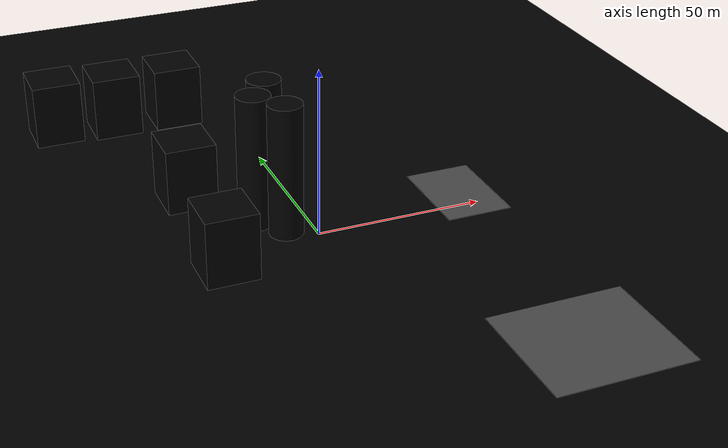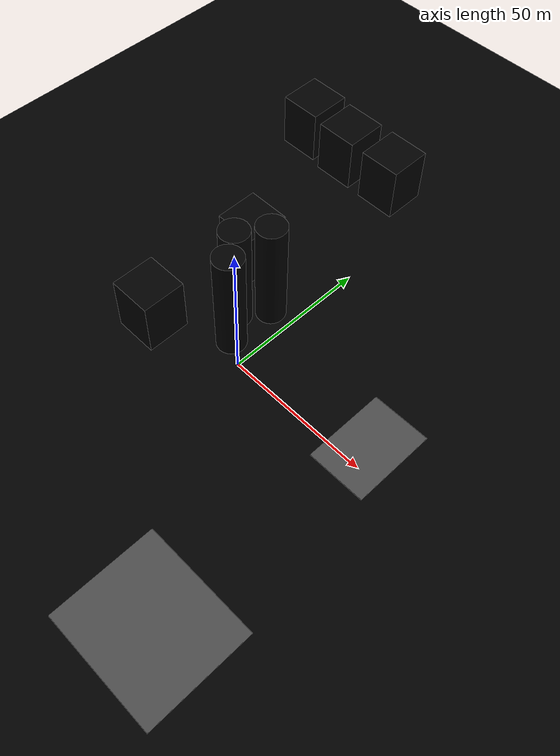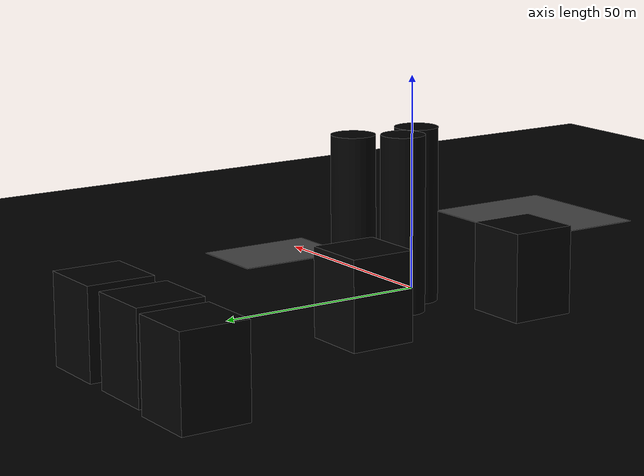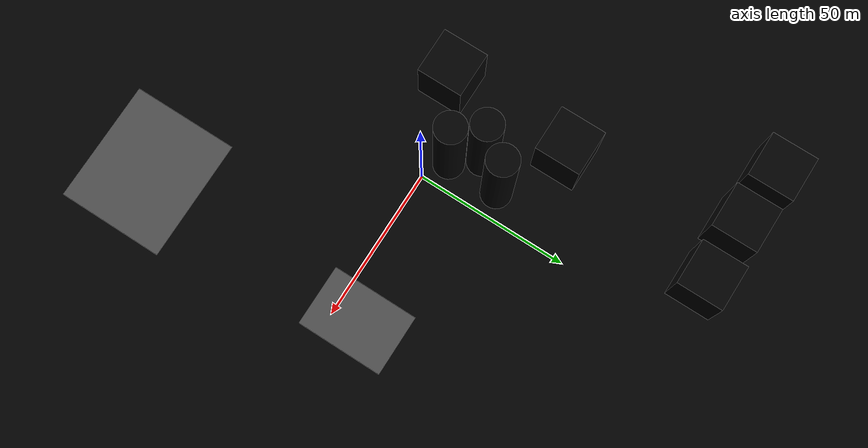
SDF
<sdf version="1.7">
 <world name="default">
  <scene>
   <ambient>1 1 1 1</ambient>
   <background>1 1 1 1</background>
   <sky><clouds><humidity>0.5</humidity></clouds></sky>
   <grid>0</grid>
   <shadows>1</shadows>
  </scene>
  <light name="sun" type="directional">
   <pose>0 0 10 0 -0 0</pose>
   <diffuse>0.8 0.8 0.8 1</diffuse>
   <specular>0.2 0.2 0.2 1</specular>
   <attenuation>
    <range>1000</range>
    <constant>0.9</constant>
    <linear>0.01</linear>
    <quadratic>0.001</quadratic>
   </attenuation>
   <direction>-0.5 0.1 -0.9</direction>
   <spot><inner_angle>0</inner_angle><outer_angle>0</outer_angle><falloff>0</falloff></spot>
  </light>
  <spherical_coordinates>
   <surface_model>EARTH_WGS84</surface_model>
   <world_frame_orientation>ENU</world_frame_orientation>
   <latitude_deg>37.3828</latitude_deg>
   <longitude_deg>-5.97317</longitude_deg>
   <elevation>0</elevation>
   <heading_deg>0</heading_deg>
  </spherical_coordinates>
  <model name="roadmap_floor">
   <static>1</static>
   <link name="link">
    <collision name="collision">
     <geometry><plane><normal>0 0 1</normal><size>100 100</size></plane></geometry>
     <surface><friction><ode><mu>25</mu><mu2>25</mu2></ode></friction></surface>
    </collision>
    <visual name="visual">
     <geometry><plane><normal>0 0 1</normal><size>300 300</size></plane></geometry>
     <material>
      <script>
       <uri>model://roadmap_floor/materials/scripts</uri>
       <uri>model://roadmap_floor/materials/textures</uri>
       <name>roadmap_floor/Image</name>
      </script>
      <ambient>1 1 1 1</ambient>
      <diffuse>0 0 0 1</diffuse>
      <specular>0 0 0 1</specular>
      <lightning>0</lightning>
     </material>
    </visual>
   </link>
  </model>
  <physics name="default_physics" default="0" type="ode">
   <max_step_size>0.001</max_step_size>
   <real_time_factor>1</real_time_factor>
   <real_time_update_rate>1000</real_time_update_rate>
  </physics>
  <gravity>0 0 -9.8</gravity>
  <magnetic_field>6e-06 2.3e-05 -4.2e-05</magnetic_field>
  <atmosphere type="adiabatic"/>
  <spherical_coordinates>
   <surface_model>EARTH_WGS84</surface_model>
   <latitude_deg>0</latitude_deg>
   <longitude_deg>0</longitude_deg>
   <elevation>0</elevation>
   <heading_deg>0</heading_deg>
  </spherical_coordinates>
  <model name="skycrapper">
   <static>1</static>
   <link name="link">
    <collision name="collision">
     <geometry><cylinder><radius>5</radius><length>40</length></cylinder></geometry>
    </collision>
    <visual name="visual">
     <geometry><cylinder><radius>5</radius><length>40</length></cylinder></geometry>
     <material>
      <script>
       <uri>model://skycrapper/materials/scripts</uri>
       <uri>model://skycrapper/materials/textures</uri>
       <name>skycrapper/Image</name>
      </script>
      <ambient>1 1 1 1</ambient>
      <diffuse>0 0 0 1</diffuse>
      <specular>0 0 0 1</specular>
      <lightning>0</lightning>
     </material>
    </visual>
   </link>
   <pose>-8.01574 4.6417 19.829 0 -0 0</pose>
  </model>
  <model name="skycrapper_clone">
   <static>1</static>
   <link name="link">
    <collision name="collision">
     <geometry><cylinder><radius>5</radius><length>40</length></cylinder></geometry>
    </collision>
    <visual name="visual">
     <geometry><cylinder><radius>5</radius><length>40</length></cylinder></geometry>
     <material>
      <script>
       <uri>model://skycrapper/materials/scripts</uri>
       <uri>model://skycrapper/materials/textures</uri>
       <name>skycrapper/Image</name>
      </script>
      <ambient>1 1 1 1</ambient>
      <diffuse>0 0 0 1</diffuse>
      <specular>0 0 0 1</specular>
      <lightning>0</lightning>
     </material>
    </visual>
   </link>
   <pose>-14.2739 12.7942 19.829 0 -0 0</pose>
  </model>
  <model name="skycrapper_clone_0">
   <static>1</static>
   <link name="link">
    <collision name="collision">
     <geometry><cylinder><radius>5</radius><length>40</length></cylinder></geometry>
    </collision>
    <visual name="visual">
     <geometry><cylinder><radius>5</radius><length>40</length></cylinder></geometry>
     <material>
      <script>
       <uri>model://skycrapper/materials/scripts</uri>
       <uri>model://skycrapper/materials/textures</uri>
       <name>skycrapper/Image</name>
      </script>
      <ambient>1 1 1 1</ambient>
      <diffuse>0 0 0 1</diffuse>
      <specular>0 0 0 1</specular>
      <lightning>0</lightning>
     </material>
    </visual>
   </link>
   <pose>-7.97258 21.7515 19.829 0 -0 0</pose>
  </model>
  <model name="asphalt_plane">
   <static>1</static>
   <link name="link">
    <collision name="collision"><geometry><box><size>40 35 0.1</size></box></geometry></collision>
    <visual name="visual">
     <cast_shadows>0</cast_shadows>
     <geometry><box><size>40 35 0.1</size></box></geometry>
     <material>
      <script>
       <uri>model://asphalt_plane/materials/scripts</uri>
       <uri>model://asphalt_plane/materials/textures</uri>
       <name>vrc/asphalt</name>
      </script>
     </material>
    </visual>
   </link>
   <pose>43.5873 -71.7755 0 0 -0 0</pose>
  </model>
  <model name="asphalt_plane_0">
   <static>1</static>
   <link name="link">
    <collision name="collision"><geometry><box><size>20 28.4641 0.1</size></box></geometry></collision>
    <visual name="visual">
     <cast_shadows>0</cast_shadows>
     <geometry><box><size>20 28.4641 0.1</size></box></geometry>
     <material>
      <script>
       <uri>model://asphalt_plane/materials/scripts</uri>
       <uri>model://asphalt_plane/materials/textures</uri>
       <name>vrc/asphalt</name>
      </script>
     </material>
    </visual>
   </link>
   <pose>47.5316 7.55429 0 0 -0 0</pose>
  </model>
  <model name="new_apartment_block">
   <static>1</static>
   <link name="link">
    <collision name="collision"><geometry><box><size>15 15 20</size></box></geometry></collision>
    <visual name="block">
     <geometry><box><size>15 15 20</size></box></geometry>
     <material>
      <script>
       <uri>model://new_apartment_block/materials/scripts</uri>
       <uri>model://new_apartment_block/materials/textures</uri>
       <name>new_apartment_facade/Image</name>
      </script>
      <ambient>1 1 1 1</ambient>
      <diffuse>0 0 0 1</diffuse>
      <specular>0 0 0 1</specular>
      <lightning>0</lightning>
     </material>
    </visual>
   </link>
   <pose>-30.2748 -8.43328 9.87145 0 -0 0</pose>
  </model>
  <model name="old_apartment_block">
   <static>1</static>
   <link name="link">
    <collision name="collision"><geometry><box><size>15 15 20</size></box></geometry></collision>
    <visual name="block">
     <geometry><box><size>15 15 20</size></box></geometry>
     <material>
      <script>
       <uri>model://old_apartment_block/materials/scripts</uri>
       <uri>model://old_apartment_block/materials/textures</uri>
       <name>old_apartment_facade/Image</name>
      </script>
      <ambient>1 1 1 1</ambient>
      <diffuse>0 0 0 1</diffuse>
      <specular>0 0 0 1</specular>
      <lightning>0</lightning>
     </material>
    </visual>
   </link>
   <pose>-28.6382 33.3997 9.77839 0 -0 0</pose>
  </model>
  <model name="new_apartment_block_clone">
   <static>1</static>
   <link name="link">
    <collision name="collision"><geometry><box><size>15 15 20</size></box></geometry></collision>
    <visual name="block">
     <geometry><box><size>15 15 20</size></box></geometry>
     <material>
      <script>
       <uri>model://new_apartment_block/materials/scripts</uri>
       <uri>model://new_apartment_block/materials/textures</uri>
       <name>new_apartment_facade/Image</name>
      </script>
      <ambient>1 1 1 1</ambient>
      <diffuse>0 0 0 1</diffuse>
      <specular>0 0 0 1</specular>
      <lightning>0</lightning>
     </material>
    </visual>
   </link>
   <pose>-16.534 88.2127 9.87145 0 -0 0</pose>
  </model>
  <model name="new_apartment_block_clone_0">
   <static>1</static>
   <link name="link">
    <collision name="collision"><geometry><box><size>15 15 20</size></box></geometry></collision>
    <visual name="block">
     <geometry><box><size>15 15 20</size></box></geometry>
     <material>
      <script>
       <uri>model://new_apartment_block/materials/scripts</uri>
       <uri>model://new_apartment_block/materials/textures</uri>
       <name>new_apartment_facade/Image</name>
      </script>
      <ambient>1 1 1 1</ambient>
      <diffuse>0 0 0 1</diffuse>
      <specular>0 0 0 1</specular>
      <lightning>0</lightning>
     </material>
    </visual>
   </link>
   <pose>-36.438 88.2262 9.87145 0 -0 0</pose>
  </model>
  <model name="new_apartment_block_clone_1">
   <static>1</static>
   <link name="link">
    <collision name="collision"><geometry><box><size>15 15 20</size></box></geometry></collision>
    <visual name="block">
     <geometry><box><size>15 15 20</size></box></geometry>
     <material>
      <script>
       <uri>model://new_apartment_block/materials/scripts</uri>
       <uri>model://new_apartment_block/materials/textures</uri>
       <name>new_apartment_facade/Image</name>
      </script>
      <ambient>1 1 1 1</ambient>
      <diffuse>0 0 0 1</diffuse>
      <specular>0 0 0 1</specular>
      <lightning>0</lightning>
     </material>
    </visual>
   </link>
   <pose>-55.2034 89.6024 9.87145 0 -0 0</pose>
  </model>
 </world>
</sdf>
